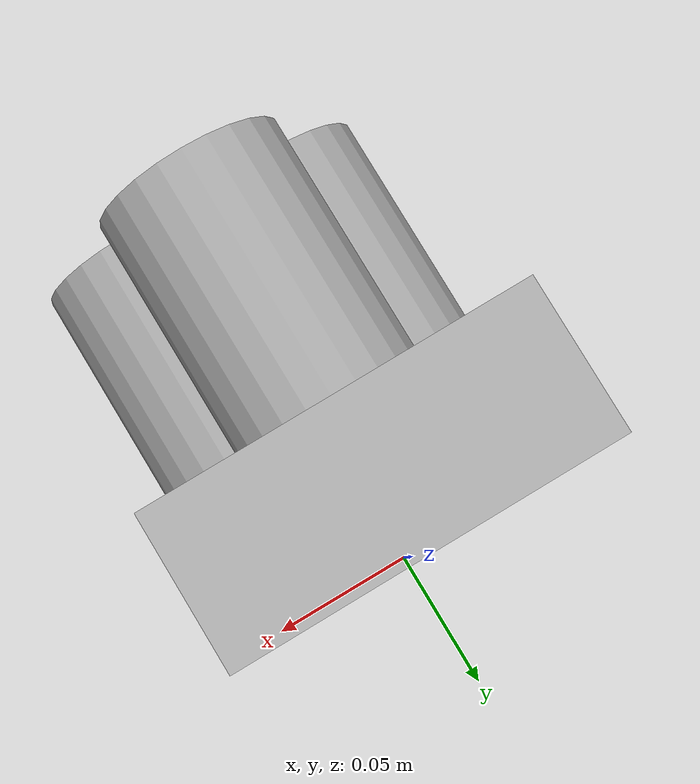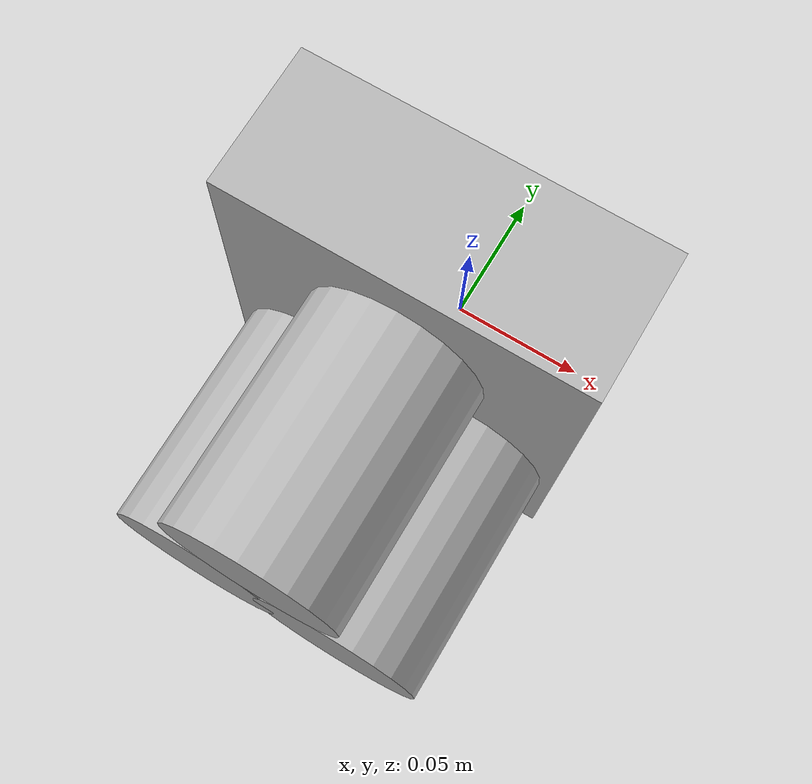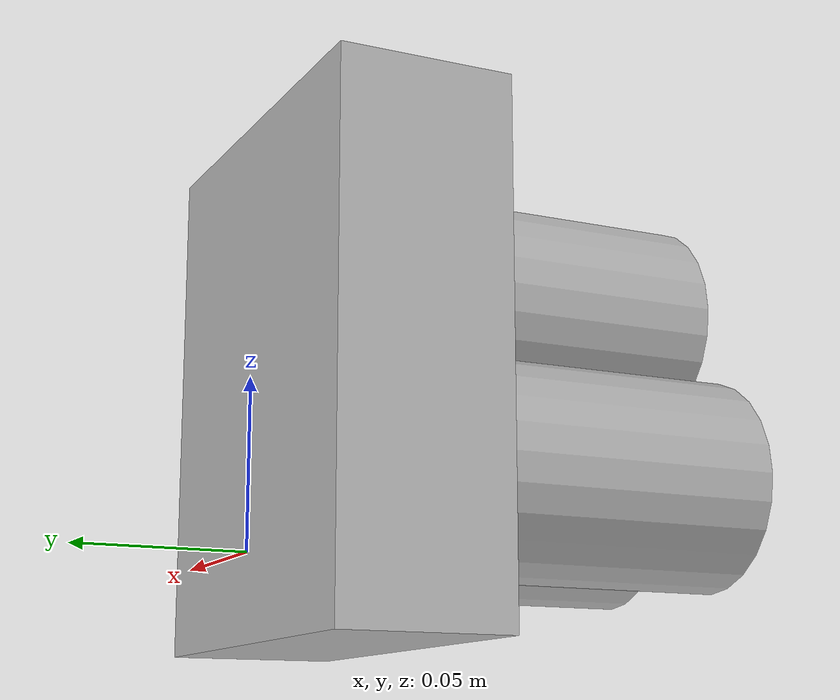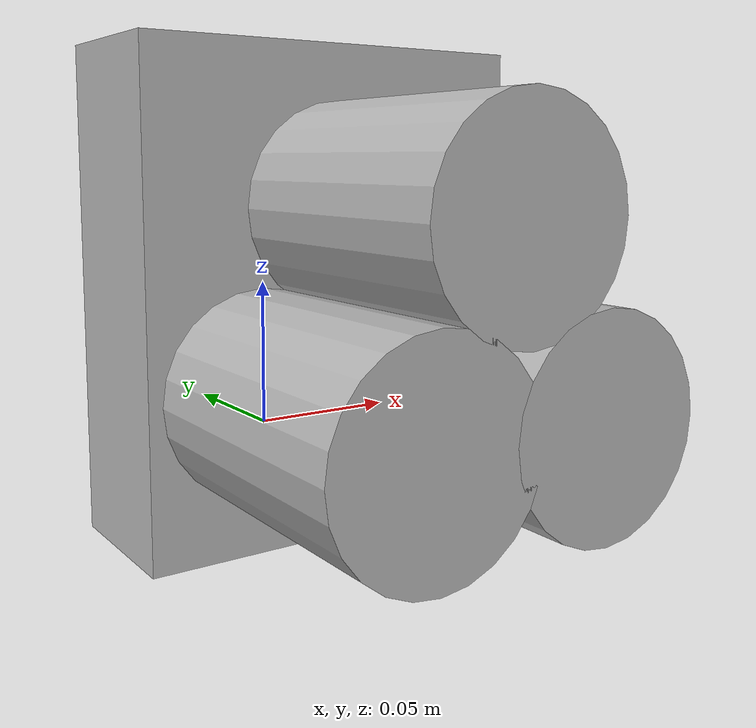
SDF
<?xml version='1.0'?>

<sdf version='1.6'>
    <model name="Drivetrain_Gearbox">
        <link name="gearbox">
            <pose>0 -0.0254 0.05079999999999999 0 0 0</pose>
            <collision name="gearbox_collision">
                <geometry>
                    <box>
                        <size>0.127 0.0508 0.15239999999999998 0 0 0</size>
                    </box>
                </geometry>
            </collision>
            <visual name="gearbox_visual">
                <geometry>
                    <box>
                        <size>0.127 0.0508 0.15239999999999998 0 0 0</size>
                    </box>
                </geometry>
            </visual>
        </link>
        <link name="output_gear">
            <pose> 0 -0.0254 0 1.5707963267948966 0 0</pose>
            <collision name="output_gear_collision">
                <geometry>
                    <cylinder>
                        <radius>0.0254</radius>
                        <length>0.00635</length>
                    </cylinder>
                </geometry>
            </collision>
            <visual name="output_gear_visual">
                <geometry>
                    <cylinder>
                        <radius>0.0254</radius>
                        <length>0.00635</length>
                    </cylinder>
                </geometry>
            </visual>
        </link>
        <joint name="output_gear_joint" type="revolute">
            <pose> 0 0 0 1.5707963267948966 0 0</pose>
            <child>output_gear</child>
            <parent>gearbox</parent>
            <axis>
                <use_parent_model_frame>true</use_parent_model_frame>
                <xyz>0.0 1.0 0.0</xyz>
            </axis>
        </joint>
        <include>
            <uri>model://GazeboSim2019/mini_cim</uri>
            <pose>0 -0.0508 0.07829630657015593 4.71238898038469 0 0</pose>
            <name>middle_cim</name>
        </include>
        <include>
            <uri>model://GazeboSim2019/mini_cim</uri>
            <pose>0.027496306570155928 -0.0508 0.02330369342984407 4.71238898038469 0 0</pose>
            <name>back_cim</name>
        </include>
        <include>
            <uri>model://GazeboSim2019/mini_cim</uri>
            <pose>-0.027496306570155928 -0.0508 0.02330369342984407 4.71238898038469 0 0</pose>
            <name>front_cim</name>
        </include>
        <joint name="front_cim_output_joint" type="gearbox">
            <child>output_gear</child>
            <parent>front_cim::motor_shaft</parent>
            <pose>0 0 0 0 0 0</pose>
            <gearbox_ratio>1</gearbox_ratio>
            <gearbox_reference_body>gearbox</gearbox_reference_body>
            <axis>
                <use_parent_model_frame>true</use_parent_model_frame>
                <xyz>0.0 -1.0 0.0</xyz>
            </axis>
            <axis2>
                <use_parent_model_frame>true</use_parent_model_frame>
                <xyz>0.0 1.0 0.0</xyz>
            </axis2>
        </joint>
        <joint name="middle_cim_output_joint" type="gearbox">
            <child>output_gear</child>
            <parent>middle_cim::motor_shaft</parent>
            <pose>0 0 0 0 0 0</pose>
            <gearbox_ratio>1</gearbox_ratio>
            <gearbox_reference_body>gearbox</gearbox_reference_body>
            <axis>
                <use_parent_model_frame>true</use_parent_model_frame>
                <xyz>0.0 -1.0 0.0</xyz>
            </axis>
            <axis2>
                <use_parent_model_frame>true</use_parent_model_frame>
                <xyz>0.0 1.0 0.0</xyz>
            </axis2>
        </joint>
        <joint name="back_cim_output_joint" type="gearbox">
            <child>output_gear</child>
            <parent>back_cim::motor_shaft</parent>
            <pose>0 0 0 0 0 0</pose>
            <gearbox_ratio>1</gearbox_ratio>
            <gearbox_reference_body>gearbox</gearbox_reference_body>
            <axis>
                <use_parent_model_frame>true</use_parent_model_frame>
                <xyz>0.0 -1.0 0.0</xyz>
            </axis>
            <axis2>
                <use_parent_model_frame>true</use_parent_model_frame>
                <xyz>0.0 1.0 0.0</xyz>
            </axis2>
        </joint>
        <joint type="fixed" name="middle_cim_joint">
            <pose>0 0 0.042671999999999995 0 0 0</pose>
            <child>middle_cim::motor</child>
            <parent>gearbox</parent>
        </joint>
        <joint type="fixed" name="back_cim_joint">
            <pose>0 0 0.042671999999999995 0 0 0</pose>
            <child>back_cim::motor</child>
            <parent>gearbox</parent>
        </joint>
        <joint type="fixed" name="front_cim_joint">
            <pose>0 0 0.042671999999999995 0 0 0</pose>
            <child>front_cim::motor</child>
            <parent>gearbox</parent>
        </joint>
    </model>
</sdf>

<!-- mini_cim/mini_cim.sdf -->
<sdf version='1.6'>
    <model name="Mini_CIM">
        <link name="motor">
            <pose>0 0 -0.042671999999999995 0 0 0</pose>
            <collision name="motor_collision">
                <geometry>
                    <cylinder>
                        <radius>0.03175</radius>
                        <length>0.08534399999999999</length>
                    </cylinder>
                </geometry>
            </collision>
            <visual name="motor_visual">
                <geometry>
                    <cylinder>
                        <radius>0.03175</radius>
                        <length>0.08534399999999999</length>
                    </cylinder>
                </geometry>
            </visual>
        </link>
        <link name="motor_shaft">
            <pose>0 0 0.0178 0 0 0</pose>
            <collision name="motor_shaft_collision">
                <geometry>
                    <cylinder>
                        <radius>0.008</radius>
                        <length>0.0356</length>
                    </cylinder>
                </geometry>
            </collision>
            <visual name="motor_shaft_visual">
                <geometry>
                    <cylinder>
                        <radius>0.008</radius>
                        <length>0.0356</length>
                    </cylinder>
                </geometry>
            </visual>
        </link>
        <joint name="motor_shaft_to_motor" type="revolute">
            <pose>0 0 -0.0178 0 0 0</pose>
            <child>motor_shaft</child>
            <parent>motor</parent>
            <axis>
                <use_parent_model_frame>true</use_parent_model_frame>
                <xyz>0.0 0.0 1.0</xyz>
            </axis>
        </joint>
    </model>
</sdf>
